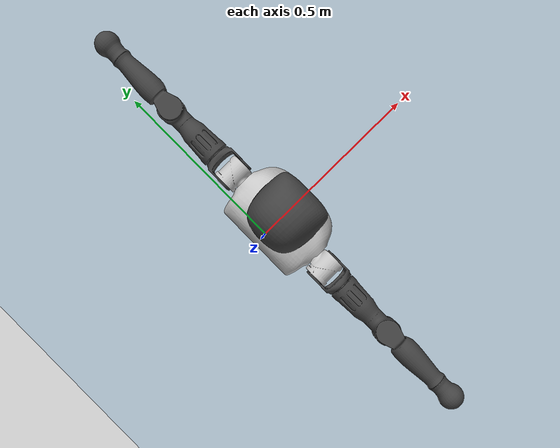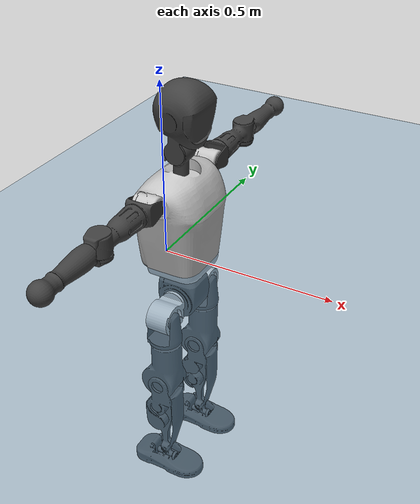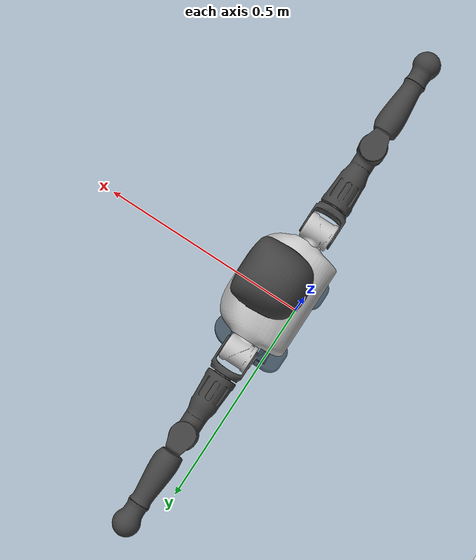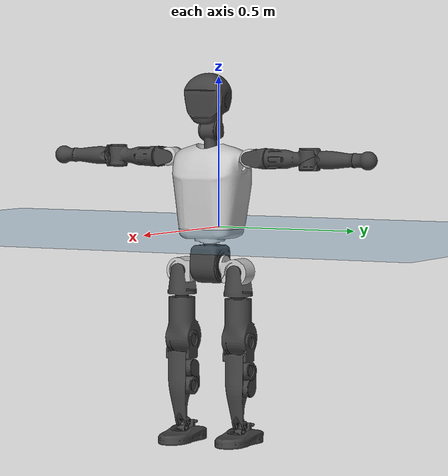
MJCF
<mujoco model="T1">
  <compiler angle="radian" assetdir="assets" balanceinertia="true" inertiafromgeom="false"/>

  <option timestep="0.005" density="1.2" viscosity="2e-05"/>

  <size nkey="1"/>

  <visual>
    <quality shadowsize="8192"/>
    <map shadowclip="0.5"/>
  </visual>

  <default>
    <default class="/">
      <joint armature="0.01" damping="0.01" frictionloss="0.1"/>
      <geom contype="0" conaffinity="0" group="1" solref="-1000 -80"/>
      <site size="0.01 0.005 0.005" group="5"/>
      <general forcelimited="true" biastype="affine" gainprm="25" biasprm="0 -25 -0.6"/>
      <default class="t1">
        <geom rgba="0.25 0.25 0.25 1"/>
        <default class="visual">
          <geom type="mesh" group="2"/>
        </default>
        <default class="collision">
          <geom group="3"/>
        </default>
        <default class="foot">
          <geom size="0.1115 0.05 0.015" type="box" condim="6" group="4" priority="1" solimp="0.015 1 0.015"/>
        </default>
        <default class="reward_collision_sphere">
          <geom group="5" rgba="1 0 0 1"/>
        </default>
      </default>
    </default>
  </default>

  <asset>
    <texture type="skybox" colorspace="auto" name="//unnamed_texture_0" builtin="gradient" rgb1="0.95 0.95 0.95" rgb2="0.95 0.95 0.95" width="100" height="600"/>
    <texture type="2d" colorspace="auto" name="texplane" builtin="checker" rgb1="0.345 0.575 0.748" rgb2="0.345 0.575 0.748" markrgb="1 1 1" width="512" height="512"/>
    <material name="MatPlane" class="/" texture="texplane" texuniform="true" texrepeat="2 2" specular="0.9"/>
    <mesh name="Trunk" class="/" file="Trunk.stl"/>
    <mesh name="H1" class="/" file="H1.stl"/>
    <mesh name="H2" class="/" file="H2.stl"/>
    <mesh name="AL1" class="/" file="AL1.stl"/>
    <mesh name="AL2" class="/" file="AL2.stl"/>
    <mesh name="AL3" class="/" file="AL3.stl"/>
    <mesh name="left_hand_link" class="/" file="left_hand_link.stl"/>
    <mesh name="AR1" class="/" file="AR1.stl"/>
    <mesh name="AR2" class="/" file="AR2.stl"/>
    <mesh name="AR3" class="/" file="AR3.stl"/>
    <mesh name="right_hand_link" class="/" file="right_hand_link.stl"/>
    <mesh name="Waist" class="/" file="Waist.stl"/>
    <mesh name="Hip_Pitch_Left" class="/" file="Hip_Pitch_Left.stl"/>
    <mesh name="Hip_Roll_Left" class="/" file="Hip_Roll_Left.stl"/>
    <mesh name="Hip_Yaw_Left" class="/" file="Hip_Yaw_Left.stl"/>
    <mesh name="Shank_Left" class="/" file="Shank_Left.stl"/>
    <mesh name="Ankle_Cross_Left" class="/" file="Ankle_Cross_Left.stl"/>
    <mesh name="left_foot_link" class="/" file="left_foot_link.stl"/>
    <mesh name="Hip_Pitch_Right" class="/" file="Hip_Pitch_Right.stl"/>
    <mesh name="Hip_Roll_Right" class="/" file="Hip_Roll_Right.stl"/>
    <mesh name="Hip_Yaw_Right" class="/" file="Hip_Yaw_Right.stl"/>
    <mesh name="Shank_Right" class="/" file="Shank_Right.stl"/>
    <mesh name="Ankle_Cross_Right" class="/" file="Ankle_Cross_Right.stl"/>
    <mesh name="right_foot_link" class="/" file="right_foot_link.stl"/>
  </asset>

  <worldbody>
    <geom name="floor" class="/" size="100 100 0.125" type="plane" group="0" material="MatPlane"/>
    <light name="toplight_shadow" class="/" pos="0 0 5" dir="0.0990148 0.0990148 -0.990148" type="directional" ambient="0.04 0.04 0.04" diffuse="0.55 0.55 0.55" specular="0.12 0.12 0.12"/>
    <light name="toplight_fill" class="/" pos="0 0 5" dir="0.0990148 0.0990148 -0.990148" type="directional" castshadow="false" ambient="0.04 0.04 0.04" diffuse="0.3 0.3 0.3" specular="0.08 0.08 0.08"/>
    <body name="trunk" childclass="t1" pos="0.00018755 0.000954265 0.000262907" quat="1 -0.000132699 -0.000508596 0.00022554">
      <inertial pos="0.0475984 -0.00109433 0.113277" quat="0.999959 0.00013522 -0.00900324 1.19707e-05" mass="11.0479" diaginertia="0.0484336 0.074544 0.0759284"/>
      <joint name="//unnamed_joint_0" type="free" armature="0" damping="0" frictionloss="0"/>
      <geom name="//unnamed_geom_1" class="visual" rgba="0.76 0.76 0.76 1" mesh="Trunk"/>
      <geom name="//unnamed_geom_2" class="collision" size="0.0735236 0.0980315 0.147047" pos="0.0528451 0 0.128225" type="box"/>
      <geom name="//unnamed_geom_3" class="reward_collision_sphere" size="0.112736" pos="0.0528451 0 0.106854"/>
      <geom name="//unnamed_geom_4" class="reward_collision_sphere" size="0.0147047" pos="0.0528451 0.0842905 0"/>
      <geom name="//unnamed_geom_5" class="reward_collision_sphere" size="0.0147047" pos="0.0528451 -0.0842905 0"/>
      <geom name="//unnamed_geom_6" class="reward_collision_sphere" size="0.0147047" pos="0.0528451 0.106107 0.192337"/>
      <geom name="//unnamed_geom_7" class="reward_collision_sphere" size="0.0147047" pos="0.0528451 -0.106107 0.192337"/>
      <site name="imu" pos="-0.00180637 0.000388667 0.00174996" size="0.00980315"/>
      <camera name="track" pos="0 -1.98331 0" quat="0.707107 0.707107 0 0" mode="trackcom"/>
      <camera name="ego_camera" pos="0.107452 0 0.448787" quat="-0.5 -0.5 0.5 0.5"/>
      <body name="H1" pos="0.0556557 -0.00113384 0.258332" quat="1 0.000208133 -0.000217852 0.000373002">
        <inertial pos="-0.000384476 -0.000268151 0.060369" quat="0.766731 -0.0124674 0.00444431 0.641832" mass="0.40776" diaginertia="0.000124546 0.000207455 0.000205401"/>
        <joint name="AAHead_yaw" pos="0 0 0" axis="0.0054992 -0.000709959 0.999985" stiffness="0.00237631" range="-1.56414 1.56081" armature="0.0101867" damping="0.00966772" frictionloss="0.0973831"/>
        <geom name="//unnamed_geom_8" class="visual" mesh="H1"/>
        <body name="H2" pos="-0.0012591 0.00103616 0.065862" quat="1 1.64499e-05 0.000172863 0.000147987">
          <inertial pos="0.00533349 0.00158465 0.105762" quat="0.988623 0.10486 -0.0730074 -0.0793661" mass="0.593783" diaginertia="0.00108488 0.00183123 0.00239105"/>
          <joint name="Head_pitch" pos="0 0 0" axis="-0.00188435 -0.999987 -0.00471323" range="-1.21744 0.350149" armature="0.00920732" damping="0.00601829" frictionloss="0.106975"/>
          <geom name="//unnamed_geom_9" class="visual" mesh="H2"/>
          <geom name="//unnamed_geom_10" class="collision" size="0.0784252" pos="0.00880751 0 0.117539"/>
          <geom name="//unnamed_geom_11" class="reward_collision_sphere" size="0.0882283" pos="0.017615 0 0.106854"/>
        </body>
      </body>
      <body name="AL1" pos="0.052146 0.104724 0.23256" quat="1 3.2605e-05 0.000523771 8.76275e-05">
        <inertial pos="-0.00200327 0.0448857 0.000496783" quat="0.502846 0.495717 -0.504352 0.497031" mass="0.497217" diaginertia="0.000720487 0.00123372 0.000405695"/>
        <joint name="Left_Shoulder_Pitch" pos="0 0 0" axis="-0.00391586 0.999966 -0.00723627" range="-3.31706 1.23927" armature="0.00959427" damping="0.0077828" frictionloss="0.0986267"/>
        <geom name="//unnamed_geom_12" class="visual" rgba="0.76 0.76 0.76 1" mesh="AL1"/>
        <body name="AL2" pos="0.000716952 0.0467664 0.000168442" quat="1 1.36871e-05 9.59659e-05 -0.000123027">
          <inertial pos="0.0025729 0.0384643 -0.000630045" quat="0.488037 0.511917 -0.487771 0.511704" mass="0.152407" diaginertia="0.000213425 0.000331161 0.000248295"/>
          <joint name="Left_Shoulder_Roll" pos="0 0 0" axis="-0.999995 -0.000147542 0.00306496" range="-1.56635 1.74995" armature="0.00974278" damping="0.00742031" frictionloss="0.0973141"/>
          <geom name="//unnamed_geom_13" class="visual" mesh="AL2"/>
          <body name="AL3" pos="0.000330712 0.0601425 -0.000585519" quat="1 -0.000118358 -4.85974e-05 0.000124775">
            <inertial pos="0.000494209 0.0845561 3.20114e-05" quat="0.705626 0.708553 0.0031478 0.00592183" mass="0.956174" diaginertia="0.00670428 0.0121879 0.000841221"/>
            <joint name="Left_Elbow_Pitch" pos="0 0 0" axis="1.76292e-05 -1 0.000192965" range="-2.26151 2.25936" armature="0.00980696" damping="0.019195" frictionloss="0.105283"/>
            <geom name="//unnamed_geom_14" class="visual" mesh="AL3"/>
            <geom name="//unnamed_geom_15" class="collision" size="0.0294094 0.0735236" pos="0 0.0495826 0" quat="0.707105 0.707108 0 0" type="cylinder"/>
            <geom name="//unnamed_geom_16" class="reward_collision_sphere" size="0.0352913"/>
            <body name="left_hand_link" pos="0.0014188 0.145718 0.000197683" quat="1 0.000103605 -0.000109613 6.47342e-05">
              <inertial pos="0.000846533 0.109271 -0.000137358" quat="0.70573 0.708481 7.49128e-05 0.000511557" mass="0.307593" diaginertia="0.00429343 0.00789769 0.00029943"/>
              <joint name="Left_Elbow_Yaw" pos="0 0 0" axis="0.000157914 0.000208021 1" range="-2.45122 0.00369074" armature="0.00944768" damping="0.00704376" frictionloss="0.0981632"/>
              <geom name="//unnamed_geom_17" class="visual" mesh="left_hand_link"/>
              <geom name="//unnamed_geom_18" class="collision" size="0.0294094 0.0857776" pos="0 0.128915 0" quat="0.707105 0.707108 0 0" type="cylinder"/>
              <geom name="//unnamed_geom_19" class="reward_collision_sphere" size="0.0490157"/>
              <geom name="//unnamed_geom_20" class="reward_collision_sphere" size="0.034311" pos="0 0.109082 0"/>
              <geom name="//unnamed_geom_21" class="reward_collision_sphere" size="0.034311" pos="0 0.213205 0"/>
            </body>
          </body>
        </body>
      </body>
      <body name="AR1" pos="0.0494783 -0.10637 0.234701" quat="1 0.000775504 0.000116814 -3.30971e-05">
        <inertial pos="-0.000704498 -0.0437735 -0.00107342" quat="0.50386 0.496234 -0.503499 0.496353" mass="0.506552" diaginertia="0.000736673 0.00125788 0.000412648"/>
        <joint name="Right_Shoulder_Pitch" pos="0 0 0" axis="-0.000389875 -1 0.000784634" range="-1.23922 3.31267" armature="0.0101132" damping="0.00226548" frictionloss="0.102734"/>
        <geom name="//unnamed_geom_22" class="visual" rgba="0.76 0.76 0.76 1" mesh="AR1"/>
        <body name="AR2" pos="-0.000675159 -0.0459598 -0.00109073" quat="1 0.000187054 0.000283281 0.000160369">
          <inertial pos="0.00427747 -0.0382098 0.000231976" quat="0.512515 0.48889 -0.510667 0.487374" mass="0.151277" diaginertia="0.000213721 0.00032888 0.000246524"/>
          <joint name="Right_Shoulder_Roll" pos="0 0 0" axis="-0.999945 0.00812314 0.00662776" range="-1.72061 1.59045" armature="0.00975746" damping="0.00444398" frictionloss="0.0954949"/>
          <geom name="//unnamed_geom_23" class="visual" mesh="AR2"/>
          <body name="AR3" pos="4.16598e-05 -0.0601888 -7.40521e-05" quat="1 0.000261736 -3.21812e-05 0.000337996">
            <inertial pos="0.00142264 -0.0846675 -0.00104455" quat="0.708635 0.705574 0.00118098 -0.000587205" mass="0.963374" diaginertia="0.00700431 0.0127092 0.00089241"/>
            <joint name="Right_Elbow_Pitch" pos="0 0 0" axis="-0.00428764 0.999989 0.00205247" stiffness="0.00161191" range="-2.25608 2.22971" armature="0.00971804" damping="0.00795455" frictionloss="0.0932766"/>
            <geom name="//unnamed_geom_24" class="visual" mesh="AR3"/>
            <geom name="//unnamed_geom_25" class="collision" size="0.0294094 0.0735236" pos="0 -0.0495826 0" quat="0.707105 0.707108 0 0" type="cylinder"/>
            <geom name="//unnamed_geom_26" class="reward_collision_sphere" size="0.0352913"/>
            <body name="right_hand_link" pos="0.000256196 -0.145081 0.000202192" quat="1 0.00014491 -4.17807e-05 -0.000252131">
              <inertial pos="0.00102731 -0.109382 0.000314991" quat="0.706764 0.707449 0.00010913 -0.0007145" mass="0.300156" diaginertia="0.00413286 0.00768628 0.000297384"/>
              <joint name="Right_Elbow_Yaw" pos="0 0 0" axis="0.00201271 0.000172127 0.999998" stiffness="0.00298139" range="-0.00522141 2.42382" armature="0.0101547" damping="0.00669242" frictionloss="0.0978605"/>
              <geom name="//unnamed_geom_27" class="visual" mesh="right_hand_link"/>
              <geom name="//unnamed_geom_28" class="collision" size="0.0294094 0.0857776" pos="0 -0.128915 0" quat="0.707105 0.707108 0 0" type="cylinder"/>
              <geom name="//unnamed_geom_29" class="reward_collision_sphere" size="0.0490157"/>
              <geom name="//unnamed_geom_30" class="reward_collision_sphere" size="0.034311" pos="0 -0.109082 0"/>
              <geom name="//unnamed_geom_31" class="reward_collision_sphere" size="0.034311" pos="0 -0.213205 0"/>
            </body>
          </body>
        </body>
      </body>
      <body name="Waist" pos="0.0555186 -0.00224205 -0.124195" quat="1 9.08095e-05 -4.58158e-05 7.60413e-05">
        <inertial pos="0.0010358 -0.000376199 0.00735589" quat="0.983522 0.000834183 -0.18077 0.00237248" mass="2.44018" diaginertia="0.00288394 0.00518069 0.00666259"/>
        <joint name="Waist" pos="0 0 0" axis="0.00458246 0.00116716 0.999989" range="-1.55098 1.58959" armature="0.0100035" damping="0.00179277" frictionloss="0.0941413"/>
        <geom name="//unnamed_geom_32" class="visual" mesh="Waist"/>
        <body name="Hip_Pitch_Left" pos="0.000426762 0.105927 0.000390699" quat="1 0.000115971 0.000636597 -6.15758e-05">
          <inertial pos="0.00145835 -0.00704973 -0.0203981" quat="0.975008 0.221874 0.0111528 0.00265138" mass="0.977244" diaginertia="0.000968626 0.00141575 0.00176707"/>
          <joint name="Left_Hip_Pitch" pos="0 0 0" axis="0.000701166 0.999998 0.00189371" range="-1.79206 1.58519" armature="0.00984598" damping="0.00581895" frictionloss="0.0966275"/>
          <geom name="//unnamed_geom_33" class="visual" rgba="0.76 0.76 0.76 1" mesh="Hip_Pitch_Left"/>
          <body name="Hip_Roll_Left" pos="0.00181276 -0.000344587 -0.0218394" quat="1 0.000173486 -0.000109638 6.5983e-05">
            <inertial pos="0.000820084 -0.000320767 -0.0578986" quat="0.708734 -0.005707 -0.00708125 0.705417" mass="0.370108" diaginertia="0.000934222 0.00145325 0.000712657"/>
            <joint name="Left_Hip_Roll" pos="0 0 0" axis="-0.999995 1.56615e-05 -0.00331223" range="-1.55046 0.225531" armature="0.0100339" damping="0.00657875" frictionloss="0.100431"/>
            <geom name="//unnamed_geom_34" class="visual" mesh="Hip_Roll_Left"/>
            <geom name="//unnamed_geom_35" class="reward_collision_sphere" size="0.0539173"/>
            <body name="Hip_Yaw_Left" pos="0.000140005 0.000554878 -0.0859906" quat="1 1.24437e-05 -8.82248e-06 2.62883e-06">
              <inertial pos="-0.00522625 -0.000662989 -0.0961386" quat="0.698105 -0.031511 -0.0320103 0.714585" mass="2.01254" diaginertia="0.0133707 0.0235482 0.00352527"/>
              <joint name="Left_Hip_Yaw" pos="0 0 0" axis="-0.000360068 -0.000775568 -1" range="-1.01245 1.04359" armature="0.00936814" damping="0" frictionloss="0.0990636"/>
              <geom name="//unnamed_geom_36" class="visual" mesh="Hip_Yaw_Left"/>
              <geom name="//unnamed_geom_37" class="collision" size="0.0490157 0.0784252" type="cylinder"/>
              <body name="Shank_Left" pos="-0.0118587 0.000678136 -0.144859" quat="1 0.000139526 -0.000364393 0.000215982">
                <inertial pos="-0.00576053 0.000665008 -0.133334" quat="0.997618 0.00238862 -0.0239241 0.0646557" mass="1.65926" diaginertia="0.0186465 0.0334987 0.00262639"/>
                <joint name="Left_Knee_Pitch" pos="0 0 0" axis="-0.00403342 0.999991 -0.000914062" range="-0.0179341 2.33864" armature="0.00983046" damping="0.0167194" frictionloss="0.100248"/>
                <geom name="//unnamed_geom_38" class="visual" mesh="Shank_Left"/>
                <geom name="//unnamed_geom_39" class="collision" size="0.0490157 0.0735236" pos="0 0 -0.128225" type="cylinder"/>
                <geom name="//unnamed_geom_40" class="reward_collision_sphere" size="0.0637205"/>
                <body name="Ankle_Cross_Left" pos="0.00117221 0.000743863 -0.299885" quat="1 -4.24682e-05 -0.000132921 -0.00015725">
                  <inertial pos="-0.00426294 0.00132065 -0.0086236" quat="0.444067 0.550716 0.550984 0.442644" mass="0.0690353" diaginertia="1.52332e-05 2.42477e-05 1.57768e-05"/>
                  <joint name="Left_Ankle_Pitch" pos="0 0 0" axis="-0.000429045 0.999999 -0.0010471" range="-0.860694 0.350187" armature="0.00945207" damping="0.004211" frictionloss="0.0940179"/>
                  <geom name="//unnamed_geom_41" class="visual" mesh="Ankle_Cross_Left"/>
                  <body name="left_foot_link" pos="0.000354136 -0.000950353 -0.0117159" quat="1 -0.000742966 9.74301e-06 -0.000356041">
                    <inertial pos="-0.0013345 -5.94963e-05 -0.00890186" quat="0.000492475 0.622414 0.00387921 0.782678" mass="0.650173" diaginertia="0.00141393 0.00228704 0.00305414"/>
                    <joint name="Left_Ankle_Roll" pos="0 0 0" axis="-0.999995 -0.00223073 0.00236002" range="-0.459988 0.416016" armature="0.00934597" damping="0.00692457" frictionloss="0.0927868"/>
                    <geom name="//unnamed_geom_42" class="visual" mesh="left_foot_link"/>
                    <geom name="left_foot" class="foot" size="0.103394 0.0507641 0.0147946" pos="0.00880751 0 -0.0160281"/>
                    <geom name="//unnamed_geom_44" class="reward_collision_sphere" size="0.0509764" pos="0.00880751 0 -0.0160281"/>
                    <geom name="//unnamed_geom_45" class="reward_collision_sphere" size="0.0294094" pos="0.0836714 -0.022808 -0.0160281"/>
                    <geom name="//unnamed_geom_46" class="reward_collision_sphere" size="0.0294094" pos="-0.0616526 -0.022808 -0.0160281"/>
                    <site name="left_foot" class="foot" pos="0.00880751 0 -0.0160281" size="0.00980315"/>
                  </body>
                </body>
              </body>
            </body>
          </body>
        </body>
        <body name="Hip_Pitch_Right" pos="-0.00163186 -0.105886 -0.000242642" quat="1 -7.74807e-05 2.68006e-06 2.42948e-05">
          <inertial pos="-0.00029282 0.00758459 -0.019914" quat="0.973155 -0.229556 0.0163245 -0.0027491" mass="0.958241" diaginertia="0.00096958 0.00140081 0.00173838"/>
          <joint name="Right_Hip_Pitch" pos="0 0 0" axis="-0.00142157 -0.999999 4.06102e-05" stiffness="0.00538376" range="-1.5571 1.80575" armature="0.00959248" damping="0.00883348" frictionloss="0.102669"/>
          <geom name="//unnamed_geom_47" class="visual" rgba="0.76 0.76 0.76 1" mesh="Hip_Pitch_Right"/>
          <body name="Hip_Roll_Right" pos="0.00126507 -0.00120529 -0.0216818" quat="1 1.32678e-05 -9.13188e-06 8.0175e-06">
            <inertial pos="0.000749391 -0.000924454 -0.057581" quat="0.707096 -0.00658169 -0.00612495 0.707061" mass="0.36423" diaginertia="0.000915123 0.00144102 0.000710768"/>
            <joint name="Right_Hip_Roll" pos="0 0 0" axis="-0.999998 0.00179153 -5.04899e-05" stiffness="0.0045724" range="-0.201698 1.5382" armature="0.00998114" damping="0.000207275" frictionloss="0.0913207"/>
            <geom name="//unnamed_geom_48" class="visual" mesh="Hip_Roll_Right"/>
            <geom name="//unnamed_geom_49" class="reward_collision_sphere" size="0.0539173"/>
            <body name="Hip_Yaw_Right" pos="0.00171019 0.000149626 -0.0878127" quat="1 0.000275859 0.000103526 0.000269673">
              <inertial pos="-0.00637987 0.000242101 -0.0959093" quat="0.718578 -0.0361946 -0.0381022 0.693458" mass="2.02278" diaginertia="0.0133957 0.0240596 0.00354784"/>
              <joint name="Right_Hip_Yaw" pos="0 0 0" axis="0.00391063 -0.00184639 -0.999991" range="-0.992107 1.01533" armature="0.00981461" damping="0.00630467" frictionloss="0.0995279"/>
              <geom name="//unnamed_geom_50" class="visual" mesh="Hip_Yaw_Right"/>
              <geom name="//unnamed_geom_51" class="collision" size="0.0490157 0.0784252" type="cylinder"/>
              <body name="Shank_Right" pos="-0.0104504 -0.00111887 -0.142791" quat="1 -0.000110034 -3.6296e-05 0.000238261">
                <inertial pos="-0.0062876 0.000103537 -0.13072" quat="0.999168 -0.00549475 -0.021744 -0.0340586" mass="1.72567" diaginertia="0.0188885 0.0338343 0.0027451"/>
                <joint name="Right_Knee_Pitch" pos="0 0 0" axis="0.00542201 -0.999978 0.00375792" range="-2.34782 -0.0138452" armature="0.00977814" damping="0.0139489" frictionloss="0.0980683"/>
                <geom name="//unnamed_geom_52" class="visual" mesh="Shank_Right"/>
                <geom name="//unnamed_geom_53" class="collision" size="0.0490157 0.0735236" pos="0 0 -0.128225" type="cylinder"/>
                <geom name="//unnamed_geom_54" class="reward_collision_sphere" size="0.0637205"/>
                <body name="Ankle_Cross_Right" pos="-0.00130124 -0.00103919 -0.300156" quat="1 -0.000235844 0.000102581 1.88484e-05">
                  <inertial pos="-0.00373857 0.000621098 -0.00809984" quat="0.443226 0.550917 0.551085 0.44311" mass="0.0688606" diaginertia="1.49951e-05 2.46376e-05 1.57884e-05"/>
                  <joint name="Right_Ankle_Pitch" pos="0 0 0" axis="0.00187608 -0.999996 -0.00188454" range="-0.387478 0.876677" armature="0.00974284" damping="0.00990529" frictionloss="0.0955519"/>
                  <geom name="//unnamed_geom_55" class="visual" mesh="Ankle_Cross_Right"/>
                  <body name="right_foot_link" pos="0.000750633 -5.35604e-05 -0.0135826" quat="1 -7.38415e-05 -0.000141294 -0.000113862">
                    <inertial pos="-0.000205939 0.000211346 -0.00992826" quat="0.00212427 0.61783 -0.00220405 0.786306" mass="0.66364" diaginertia="0.00143812 0.00229372 0.00303499"/>
                    <joint name="Right_Ankle_Roll" pos="0 0 0" axis="-0.999998 -0.00159324 -0.000988243" range="-0.447177 0.455265" armature="0.00988736" damping="0.00870812" frictionloss="0.0906353"/>
                    <geom name="//unnamed_geom_56" class="visual" mesh="right_foot_link"/>
                    <geom name="right_foot" class="foot" size="0.0986021 0.045618 0.0146613" pos="0.00880751 0 -0.0160281"/>
                    <geom name="//unnamed_geom_58" class="reward_collision_sphere" size="0.0392126"/>
                    <geom name="//unnamed_geom_59" class="reward_collision_sphere" size="0.0294094" pos="0.00880751 0 -0.0160281"/>
                    <geom name="//unnamed_geom_60" class="reward_collision_sphere" size="0.0294094" pos="0.0836714 0.022808 -0.0160281"/>
                    <geom name="//unnamed_geom_61" class="reward_collision_sphere" size="0.0294094" pos="-0.0616526 0.022808 -0.0160281"/>
                    <site name="right_foot" class="foot" pos="0.00880751 0 -0.0160281" size="0.00980315"/>
                  </body>
                </body>
              </body>
            </body>
          </body>
        </body>
      </body>
    </body>
  </worldbody>

  <contact>
    <pair class="/" geom1="floor" geom2="left_foot" name="//unnamed_contact_0"/>
    <pair class="/" geom1="floor" geom2="right_foot" name="//unnamed_contact_1"/>
  </contact>

  <actuator>
    <general name="AAHead_yaw" class="/" joint="AAHead_yaw" forcerange="-6.99556 6.99556" gainprm="23.4158" biasprm="0 -23.4158 -0.559123"/>
    <general name="Head_pitch" class="/" joint="Head_pitch" forcerange="-6.72091 6.72091" gainprm="23.4158" biasprm="0 -23.4158 -0.559123"/>
    <general name="Left_Shoulder_Pitch" class="/" joint="Left_Shoulder_Pitch" forcerange="-16.3047 16.3047" gainprm="23.4158" biasprm="0 -23.4158 -0.559123"/>
    <general name="Left_Shoulder_Roll" class="/" joint="Left_Shoulder_Roll" forcerange="-17.399 17.399" gainprm="23.4158" biasprm="0 -23.4158 -0.559123"/>
    <general name="Left_Elbow_Pitch" class="/" joint="Left_Elbow_Pitch" forcerange="-18.3382 18.3382" gainprm="23.4158" biasprm="0 -23.4158 -0.559123"/>
    <general name="Left_Elbow_Yaw" class="/" joint="Left_Elbow_Yaw" forcerange="-17.894 17.894" gainprm="23.4158" biasprm="0 -23.4158 -0.559123"/>
    <general name="Right_Shoulder_Pitch" class="/" joint="Right_Shoulder_Pitch" forcerange="-17.5735 17.5735" gainprm="23.4158" biasprm="0 -23.4158 -0.559123"/>
    <general name="Right_Shoulder_Roll" class="/" joint="Right_Shoulder_Roll" forcerange="-17.4512 17.4512" gainprm="23.4158" biasprm="0 -23.4158 -0.559123"/>
    <general name="Right_Elbow_Pitch" class="/" joint="Right_Elbow_Pitch" forcerange="-18.291 18.291" gainprm="23.4158" biasprm="0 -23.4158 -0.559123"/>
    <general name="Right_Elbow_Yaw" class="/" joint="Right_Elbow_Yaw" forcerange="-18.1407 18.1407" gainprm="23.4158" biasprm="0 -23.4158 -0.559123"/>
    <general name="Waist" class="/" joint="Waist" forcerange="-30.5866 30.5866" gainprm="23.4158" biasprm="0 -23.4158 -0.559123"/>
    <general name="Left_Hip_Pitch" class="/" joint="Left_Hip_Pitch" forcerange="-43.758 43.758" gainprm="23.4158" biasprm="0 -23.4158 -0.559123"/>
    <general name="Left_Hip_Roll" class="/" joint="Left_Hip_Roll" forcerange="-30.445 30.445" gainprm="23.4158" biasprm="0 -23.4158 -0.559123"/>
    <general name="Left_Hip_Yaw" class="/" joint="Left_Hip_Yaw" forcerange="-30.463 30.463" gainprm="23.4158" biasprm="0 -23.4158 -0.559123"/>
    <general name="Left_Knee_Pitch" class="/" joint="Left_Knee_Pitch" forcerange="-56.5702 56.5702" gainprm="23.4158" biasprm="0 -23.4158 -0.559123"/>
    <general name="Left_Ankle_Pitch" class="/" joint="Left_Ankle_Pitch" forcerange="-20.6034 20.6034" gainprm="23.4158" biasprm="0 -23.4158 -0.559123"/>
    <general name="Left_Ankle_Roll" class="/" joint="Left_Ankle_Roll" forcerange="-14.2396 14.2396" gainprm="23.4158" biasprm="0 -23.4158 -0.559123"/>
    <general name="Right_Hip_Pitch" class="/" joint="Right_Hip_Pitch" forcerange="-43.7891 43.7891" gainprm="23.4158" biasprm="0 -23.4158 -0.559123"/>
    <general name="Right_Hip_Roll" class="/" joint="Right_Hip_Roll" forcerange="-30.3391 30.3391" gainprm="23.4158" biasprm="0 -23.4158 -0.559123"/>
    <general name="Right_Hip_Yaw" class="/" joint="Right_Hip_Yaw" forcerange="-29.5307 29.5307" gainprm="23.4158" biasprm="0 -23.4158 -0.559123"/>
    <general name="Right_Knee_Pitch" class="/" joint="Right_Knee_Pitch" forcerange="-59.6495 59.6495" gainprm="23.4158" biasprm="0 -23.4158 -0.559123"/>
    <general name="Right_Ankle_Pitch" class="/" joint="Right_Ankle_Pitch" forcerange="-19.811 19.811" gainprm="23.4158" biasprm="0 -23.4158 -0.559123"/>
    <general name="Right_Ankle_Roll" class="/" joint="Right_Ankle_Roll" forcerange="-14.9457 14.9457" gainprm="23.4158" biasprm="0 -23.4158 -0.559123"/>
  </actuator>

  <sensor>
    <gyro site="imu" name="imu_angular_velocity"/>
    <velocimeter site="imu" name="imu_linear_velocity"/>
    <framelinvel objtype="site" objname="left_foot" name="left_foot_global_linear_velocity"/>
    <framelinvel objtype="site" objname="right_foot" name="right_foot_global_linear_velocity"/>
  </sensor>

  <keyframe>
    <key name="home" qpos="0 0 0.6385 1 0 0 0 0 0 0 1.4 0 -0.4 0 -1.4 0 0.4 0 -0.4 0 0 0.8 -0.4 0 0.4 0 0 -0.8 0.4 0"/>
  </keyframe>
</mujoco>
